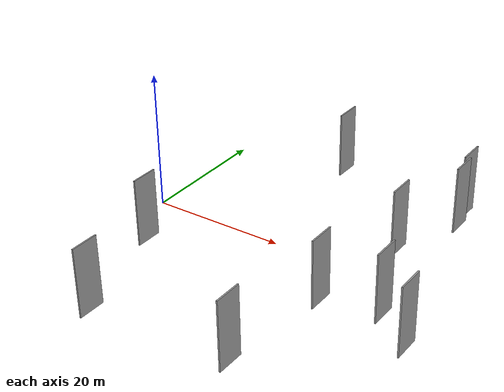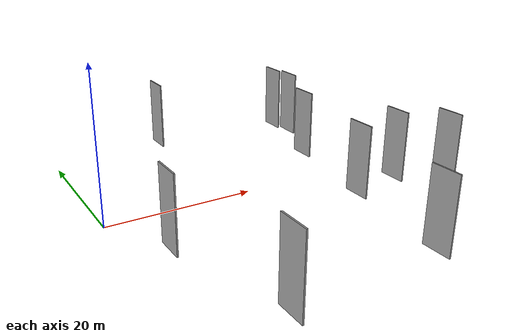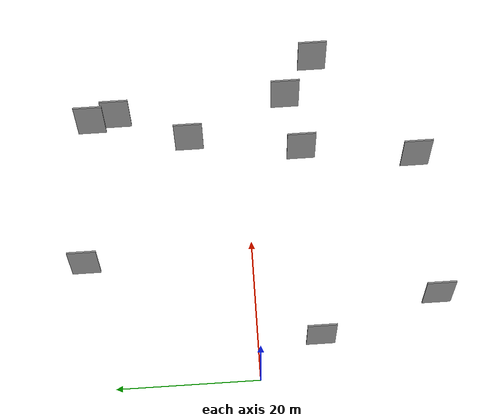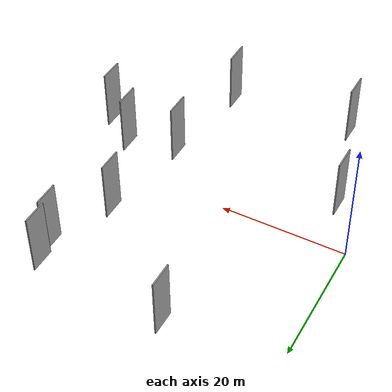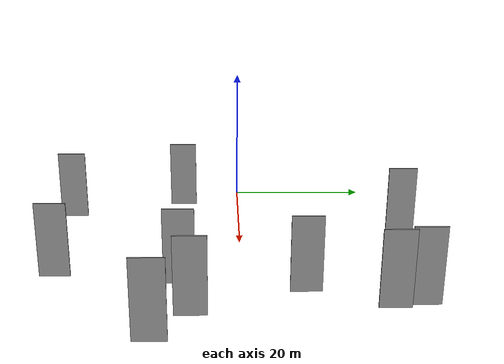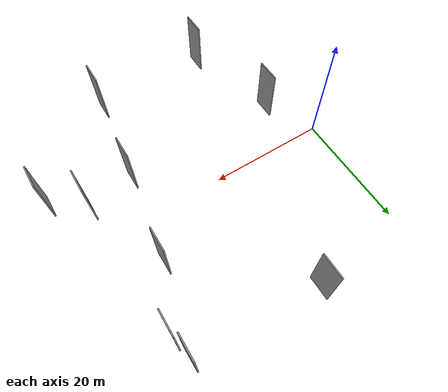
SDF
<sdf version="1.6">
 <world name="default">
  <scene>
   <sky><clouds><speed>12</speed></clouds></sky>
   <ambient>0.4 0.4 0.4 1</ambient>
   <background>0.7 0.7 0.7 1</background>
   <shadows>1</shadows>
  </scene>
  <gravity>0 0 -9.8066</gravity>
  <magnetic_field>6e-06 2.3e-05 -4.2e-05</magnetic_field>
  <physics default="0" name="default_physics" type="ode">
   <ode>
    <solver>
     <type>quick</type>
     <iters>10</iters>
     <sor>1.0</sor>
     <use_dynamic_moi_rescaling>0</use_dynamic_moi_rescaling>
    </solver>
    <constraints>
     <cfm>0</cfm>
     <erp>0.2</erp>
     <contact_max_correcting_vel>100</contact_max_correcting_vel>
     <contact_surface_layer>0.001</contact_surface_layer>
    </constraints>
   </ode>
   <max_step_size>0.004</max_step_size>
   <real_time_factor>1</real_time_factor>
   <real_time_update_rate>250</real_time_update_rate>
  </physics>
  <light name="sun" type="directional">
   <pose>0 0 10 0 0 0</pose>
   <diffuse>0.8 0.8 0.8 1</diffuse>
   <specular>0.2 0.2 0.2 1</specular>
   <attenuation>
    <range>1000</range>
    <constant>0.9</constant>
    <linear>0.01</linear>
    <quadratic>0.001</quadratic>
   </attenuation>
   <direction>-0.5 0.1 -0.9</direction>
  </light>
  <model name="grey_wall_1">
   <static>1</static>
   <pose>34.5779 7.9011 0.0 0.000000 0.000000 1.570796</pose>
   <link name="link">
    <pose>0 0 5.00 0 0 0</pose>
    <collision name="collision"><geometry><box><size>4.00 0.2 10.00</size></box></geometry></collision>
    <visual name="visual">
     <cast_shadows>0</cast_shadows>
     <geometry><box><size>4.00 0.2 10.00</size></box></geometry>
     <material>
      <script>
       <uri>model://grey_wall/materials/scripts</uri>
       <uri>model://grey_wall/materials/textures</uri>
       <name>vrc/grey_wall</name>
      </script>
     </material>
    </visual>
   </link>
  </model>
  <model name="grey_wall_2">
   <static>1</static>
   <pose>40.2052 -6.1207 0.0 0.000000 0.000000 1.570796</pose>
   <link name="link">
    <pose>0 0 5.00 0 0 0</pose>
    <collision name="collision"><geometry><box><size>4.00 0.2 10.00</size></box></geometry></collision>
    <visual name="visual">
     <cast_shadows>0</cast_shadows>
     <geometry><box><size>4.00 0.2 10.00</size></box></geometry>
     <material>
      <script>
       <uri>model://grey_wall/materials/scripts</uri>
       <uri>model://grey_wall/materials/textures</uri>
       <name>vrc/grey_wall</name>
      </script>
     </material>
    </visual>
   </link>
  </model>
  <model name="grey_wall_3">
   <static>1</static>
   <pose>45.7277 -10.3707 0.0 0.000000 0.000000 1.570796</pose>
   <link name="link">
    <pose>0 0 5.00 0 0 0</pose>
    <collision name="collision"><geometry><box><size>4.00 0.2 10.00</size></box></geometry></collision>
    <visual name="visual">
     <cast_shadows>0</cast_shadows>
     <geometry><box><size>4.00 0.2 10.00</size></box></geometry>
     <material>
      <script>
       <uri>model://grey_wall/materials/scripts</uri>
       <uri>model://grey_wall/materials/textures</uri>
       <name>vrc/grey_wall</name>
      </script>
     </material>
    </visual>
   </link>
  </model>
  <model name="grey_wall_4">
   <static>1</static>
   <pose>4.7357 -8.6337 0.0 0.000000 0.000000 1.570796</pose>
   <link name="link">
    <pose>0 0 5.00 0 0 0</pose>
    <collision name="collision"><geometry><box><size>4.00 0.2 10.00</size></box></geometry></collision>
    <visual name="visual">
     <cast_shadows>0</cast_shadows>
     <geometry><box><size>4.00 0.2 10.00</size></box></geometry>
     <material>
      <script>
       <uri>model://grey_wall/materials/scripts</uri>
       <uri>model://grey_wall/materials/textures</uri>
       <name>vrc/grey_wall</name>
      </script>
     </material>
    </visual>
   </link>
  </model>
  <model name="grey_wall_5">
   <static>1</static>
   <pose>38.6958 18.0271 0.0 0.000000 0.000000 1.570796</pose>
   <link name="link">
    <pose>0 0 5.00 0 0 0</pose>
    <collision name="collision"><geometry><box><size>4.00 0.2 10.00</size></box></geometry></collision>
    <visual name="visual">
     <cast_shadows>0</cast_shadows>
     <geometry><box><size>4.00 0.2 10.00</size></box></geometry>
     <material>
      <script>
       <uri>model://grey_wall/materials/scripts</uri>
       <uri>model://grey_wall/materials/textures</uri>
       <name>vrc/grey_wall</name>
      </script>
     </material>
    </visual>
   </link>
  </model>
  <model name="grey_wall_6">
   <static>1</static>
   <pose>17.0913 23.3332 0.0 0.000000 0.000000 1.570796</pose>
   <link name="link">
    <pose>0 0 5.00 0 0 0</pose>
    <collision name="collision"><geometry><box><size>4.00 0.2 10.00</size></box></geometry></collision>
    <visual name="visual">
     <cast_shadows>0</cast_shadows>
     <geometry><box><size>4.00 0.2 10.00</size></box></geometry>
     <material>
      <script>
       <uri>model://grey_wall/materials/scripts</uri>
       <uri>model://grey_wall/materials/textures</uri>
       <name>vrc/grey_wall</name>
      </script>
     </material>
    </visual>
   </link>
  </model>
  <model name="grey_wall_7">
   <static>1</static>
   <pose>30.0577 -23.9778 0.0 0.000000 0.000000 1.570796</pose>
   <link name="link">
    <pose>0 0 5.00 0 0 0</pose>
    <collision name="collision"><geometry><box><size>4.00 0.2 10.00</size></box></geometry></collision>
    <visual name="visual">
     <cast_shadows>0</cast_shadows>
     <geometry><box><size>4.00 0.2 10.00</size></box></geometry>
     <material>
      <script>
       <uri>model://grey_wall/materials/scripts</uri>
       <uri>model://grey_wall/materials/textures</uri>
       <name>vrc/grey_wall</name>
      </script>
     </material>
    </visual>
   </link>
  </model>
  <model name="grey_wall_8">
   <static>1</static>
   <pose>32.1844 -7.8742 0.0 0.000000 0.000000 1.570796</pose>
   <link name="link">
    <pose>0 0 5.00 0 0 0</pose>
    <collision name="collision"><geometry><box><size>4.00 0.2 10.00</size></box></geometry></collision>
    <visual name="visual">
     <cast_shadows>0</cast_shadows>
     <geometry><box><size>4.00 0.2 10.00</size></box></geometry>
     <material>
      <script>
       <uri>model://grey_wall/materials/scripts</uri>
       <uri>model://grey_wall/materials/textures</uri>
       <name>vrc/grey_wall</name>
      </script>
     </material>
    </visual>
   </link>
  </model>
  <model name="grey_wall_9">
   <static>1</static>
   <pose>9.6004 -25.2210 0.0 0.000000 0.000000 1.570796</pose>
   <link name="link">
    <pose>0 0 5.00 0 0 0</pose>
    <collision name="collision"><geometry><box><size>4.00 0.2 10.00</size></box></geometry></collision>
    <visual name="visual">
     <cast_shadows>0</cast_shadows>
     <geometry><box><size>4.00 0.2 10.00</size></box></geometry>
     <material>
      <script>
       <uri>model://grey_wall/materials/scripts</uri>
       <uri>model://grey_wall/materials/textures</uri>
       <name>vrc/grey_wall</name>
      </script>
     </material>
    </visual>
   </link>
  </model>
  <model name="grey_wall_10">
   <static>1</static>
   <pose>38.0007 21.6963 0.0 0.000000 0.000000 1.570796</pose>
   <link name="link">
    <pose>0 0 5.00 0 0 0</pose>
    <collision name="collision"><geometry><box><size>4.00 0.2 10.00</size></box></geometry></collision>
    <visual name="visual">
     <cast_shadows>0</cast_shadows>
     <geometry><box><size>4.00 0.2 10.00</size></box></geometry>
     <material>
      <script>
       <uri>model://grey_wall/materials/scripts</uri>
       <uri>model://grey_wall/materials/textures</uri>
       <name>vrc/grey_wall</name>
      </script>
     </material>
    </visual>
   </link>
  </model>
 </world>
</sdf>
